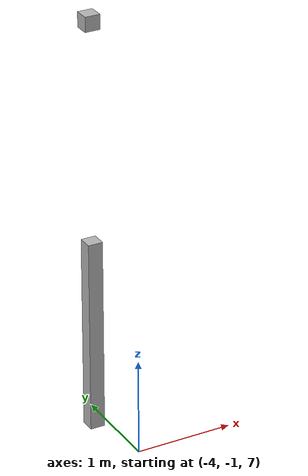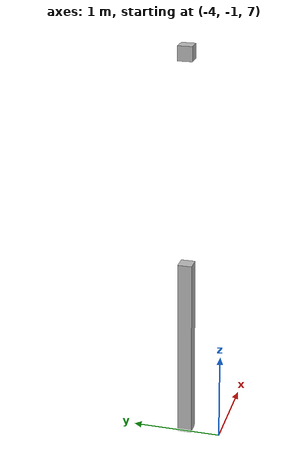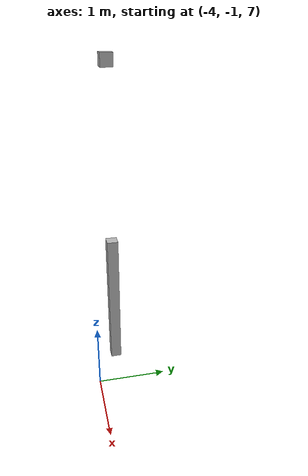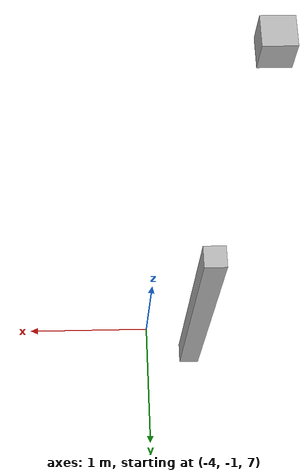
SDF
<sdf version="1.7">
 <world name="default">
  <model name="orthogonal_747_2.000.15_TS">
   <static>1</static>
   <link name="z_link_5_2_1">
    <inertial>
     <mass>1</mass>
     <inertia>
      <ixx>0.166667</ixx>
      <ixy>0</ixy>
      <ixz>0</ixz>
      <iyy>0.166667</iyy>
      <iyz>0</iyz>
      <izz>0.166667</izz>
     </inertia>
    </inertial>
    <pose>2.15 4.3 10.75 0 -0 0</pose>
    <visual name="visual_0">
     <laser_retro>4796</laser_retro>
     <geometry><box><size>0.15 1e-06 2</size></box></geometry>
     <material>
      <script><name>Gazebo/Grey</name><uri>file://media/materials/scripts/gazebo.material</uri></script>
      <shader type="pixel"><normal_map>__default__</normal_map></shader>
      <ambient>0.678 0.498 0.659 1</ambient>
      <diffuse>0.7 0.7 0.7 1</diffuse>
      <specular>0.01 0.01 0.01 1</specular>
      <emissive>0 0 0 1</emissive>
     </material>
     <pose>0 -0.075 0 0 -0 0</pose>
     <transparency>1</transparency>
    </visual>
    <visual name="visual_1">
     <laser_retro>4797</laser_retro>
     <geometry><box><size>0.15 1e-06 2</size></box></geometry>
     <material>
      <script><name>Gazebo/Grey</name><uri>file://media/materials/scripts/gazebo.material</uri></script>
      <shader type="pixel"><normal_map>__default__</normal_map></shader>
      <ambient>0.447 0.624 0.812 1</ambient>
      <diffuse>0.7 0.7 0.7 1</diffuse>
      <specular>0.01 0.01 0.01 1</specular>
      <emissive>0 0 0 1</emissive>
     </material>
     <pose>0 0.075 0 0 -0 0</pose>
     <transparency>1</transparency>
    </visual>
    <visual name="visual_2">
     <laser_retro>4798</laser_retro>
     <geometry><box><size>0.15 0.15 1e-06</size></box></geometry>
     <material>
      <script><name>Gazebo/Grey</name><uri>file://media/materials/scripts/gazebo.material</uri></script>
      <shader type="pixel"><normal_map>__default__</normal_map></shader>
      <ambient>0.988 0.686 0.243 1</ambient>
      <diffuse>0.7 0.7 0.7 1</diffuse>
      <specular>0.01 0.01 0.01 1</specular>
      <emissive>0 0 0 1</emissive>
     </material>
     <pose>0 0 -1 0 -0 0</pose>
     <transparency>1</transparency>
    </visual>
    <visual name="visual_3">
     <laser_retro>4799</laser_retro>
     <geometry><box><size>1e-06 0.15 2</size></box></geometry>
     <material>
      <script><name>Gazebo/Grey</name><uri>file://media/materials/scripts/gazebo.material</uri></script>
      <shader type="pixel"><normal_map>__default__</normal_map></shader>
      <ambient>0.988 0.914 0.31 1</ambient>
      <diffuse>0.7 0.7 0.7 1</diffuse>
      <specular>0.01 0.01 0.01 1</specular>
      <emissive>0 0 0 1</emissive>
     </material>
     <pose>0.075 0 0 0 -0 0</pose>
     <transparency>1</transparency>
    </visual>
    <visual name="visual_4">
     <laser_retro>4800</laser_retro>
     <geometry><box><size>0.15 0.15 1e-06</size></box></geometry>
     <material>
      <script><name>Gazebo/Grey</name><uri>file://media/materials/scripts/gazebo.material</uri></script>
      <shader type="pixel"><normal_map>__default__</normal_map></shader>
      <ambient>0.937 0.161 0.161 1</ambient>
      <diffuse>0.7 0.7 0.7 1</diffuse>
      <specular>0.01 0.01 0.01 1</specular>
      <emissive>0 0 0 1</emissive>
     </material>
     <pose>0 0 1 0 -0 0</pose>
     <transparency>1</transparency>
    </visual>
    <visual name="visual_5">
     <laser_retro>4801</laser_retro>
     <geometry><box><size>1e-06 0.15 2</size></box></geometry>
     <material>
      <script><name>Gazebo/Grey</name><uri>file://media/materials/scripts/gazebo.material</uri></script>
      <shader type="pixel"><normal_map>__default__</normal_map></shader>
      <ambient>0.541 0.886 0.204 1</ambient>
      <diffuse>0.7 0.7 0.7 1</diffuse>
      <specular>0.01 0.01 0.01 1</specular>
      <emissive>0 0 0 1</emissive>
     </material>
     <pose>-0.075 0 0 0 -0 0</pose>
     <transparency>1</transparency>
    </visual>
    <visual name="visual_texture">
     <geometry><box><size>0.149985 0.149985 1.9998</size></box></geometry>
     <material>
      <script>
       <uri>model://BASE_MODELS/simple_block_v2_textured/materials/scripts</uri>
       <uri>model://BASE_MODELS/simple_block_v2_textured/materials/textures</uri>
       <name>metal</name>
      </script>
     </material>
     <laser_retro>4802</laser_retro>
    </visual>
    <collision name="collision">
     <geometry><box><size>0.15 0.15 2</size></box></geometry>
     <surface>
      <friction>
       <ode><mu>1</mu><mu2>1</mu2><fdir1>0 0 0</fdir1><slip1>0</slip1><slip2>0</slip2></ode>
       <torsional>
        <coefficient>1</coefficient>
        <patch_radius>0</patch_radius>
        <surface_radius>0</surface_radius>
        <use_patch_radius>1</use_patch_radius>
        <ode><slip>0</slip></ode>
       </torsional>
      </friction>
      <bounce><restitution_coefficient>0</restitution_coefficient><threshold>1e+06</threshold></bounce>
      <contact>
       <collide_without_contact>0</collide_without_contact>
       <collide_without_contact_bitmask>1</collide_without_contact_bitmask>
       <collide_bitmask>1</collide_bitmask>
       <ode>
        <soft_cfm>0</soft_cfm>
        <soft_erp>0.2</soft_erp>
        <kp>1e+13</kp>
        <kd>1</kd>
        <max_vel>0.01</max_vel>
        <min_depth>0</min_depth>
       </ode>
       <bullet>
        <split_impulse>1</split_impulse>
        <split_impulse_penetration_threshold>-0.01</split_impulse_penetration_threshold>
        <soft_cfm>0</soft_cfm>
        <soft_erp>0.2</soft_erp>
        <kp>1e+13</kp>
        <kd>1</kd>
       </bullet>
      </contact>
     </surface>
    </collision>
   </link>
   <link name="u_link_6_2_1">
    <inertial>
     <mass>1</mass>
     <inertia>
      <ixx>0.166667</ixx>
      <ixy>0</ixy>
      <ixz>0</ixz>
      <iyy>0.166667</iyy>
      <iyz>0</iyz>
      <izz>0.166667</izz>
     </inertia>
    </inertial>
    <pose>2.15 4.3 13.975 0 -0 0</pose>
    <visual name="visual_0">
     <laser_retro>5741</laser_retro>
     <geometry><box><size>0.15 1e-06 0.15</size></box></geometry>
     <material>
      <script><name>Gazebo/Grey</name><uri>file://media/materials/scripts/gazebo.material</uri></script>
      <shader type="pixel"><normal_map>__default__</normal_map></shader>
      <ambient>0.678 0.498 0.659 1</ambient>
      <diffuse>0.7 0.7 0.7 1</diffuse>
      <specular>0.01 0.01 0.01 1</specular>
      <emissive>0 0 0 1</emissive>
     </material>
     <pose>0 -0.075 0 0 -0 0</pose>
     <transparency>1</transparency>
    </visual>
    <visual name="visual_1">
     <laser_retro>5742</laser_retro>
     <geometry><box><size>0.15 1e-06 0.15</size></box></geometry>
     <material>
      <script><name>Gazebo/Grey</name><uri>file://media/materials/scripts/gazebo.material</uri></script>
      <shader type="pixel"><normal_map>__default__</normal_map></shader>
      <ambient>0.447 0.624 0.812 1</ambient>
      <diffuse>0.7 0.7 0.7 1</diffuse>
      <specular>0.01 0.01 0.01 1</specular>
      <emissive>0 0 0 1</emissive>
     </material>
     <pose>0 0.075 0 0 -0 0</pose>
     <transparency>1</transparency>
    </visual>
    <visual name="visual_2">
     <laser_retro>5743</laser_retro>
     <geometry><box><size>0.15 0.15 1e-06</size></box></geometry>
     <material>
      <script><name>Gazebo/Grey</name><uri>file://media/materials/scripts/gazebo.material</uri></script>
      <shader type="pixel"><normal_map>__default__</normal_map></shader>
      <ambient>0.988 0.686 0.243 1</ambient>
      <diffuse>0.7 0.7 0.7 1</diffuse>
      <specular>0.01 0.01 0.01 1</specular>
      <emissive>0 0 0 1</emissive>
     </material>
     <pose>0 0 -0.075 0 -0 0</pose>
     <transparency>1</transparency>
    </visual>
    <visual name="visual_3">
     <laser_retro>5744</laser_retro>
     <geometry><box><size>1e-06 0.15 0.15</size></box></geometry>
     <material>
      <script><name>Gazebo/Grey</name><uri>file://media/materials/scripts/gazebo.material</uri></script>
      <shader type="pixel"><normal_map>__default__</normal_map></shader>
      <ambient>0.988 0.914 0.31 1</ambient>
      <diffuse>0.7 0.7 0.7 1</diffuse>
      <specular>0.01 0.01 0.01 1</specular>
      <emissive>0 0 0 1</emissive>
     </material>
     <pose>0.075 0 0 0 -0 0</pose>
     <transparency>1</transparency>
    </visual>
    <visual name="visual_4">
     <laser_retro>5745</laser_retro>
     <geometry><box><size>0.15 0.15 1e-06</size></box></geometry>
     <material>
      <script><name>Gazebo/Grey</name><uri>file://media/materials/scripts/gazebo.material</uri></script>
      <shader type="pixel"><normal_map>__default__</normal_map></shader>
      <ambient>0.937 0.161 0.161 1</ambient>
      <diffuse>0.7 0.7 0.7 1</diffuse>
      <specular>0.01 0.01 0.01 1</specular>
      <emissive>0 0 0 1</emissive>
     </material>
     <pose>0 0 0.075 0 -0 0</pose>
     <transparency>1</transparency>
    </visual>
    <visual name="visual_5">
     <laser_retro>5746</laser_retro>
     <geometry><box><size>1e-06 0.15 0.15</size></box></geometry>
     <material>
      <script><name>Gazebo/Grey</name><uri>file://media/materials/scripts/gazebo.material</uri></script>
      <shader type="pixel"><normal_map>__default__</normal_map></shader>
      <ambient>0.541 0.886 0.204 1</ambient>
      <diffuse>0.7 0.7 0.7 1</diffuse>
      <specular>0.01 0.01 0.01 1</specular>
      <emissive>0 0 0 1</emissive>
     </material>
     <pose>-0.075 0 0 0 -0 0</pose>
     <transparency>1</transparency>
    </visual>
    <visual name="visual_texture">
     <geometry><box><size>0.149985 0.149985 0.149985</size></box></geometry>
     <material>
      <script>
       <uri>model://BASE_MODELS/simple_block_v2_textured/materials/scripts</uri>
       <uri>model://BASE_MODELS/simple_block_v2_textured/materials/textures</uri>
       <name>metal</name>
      </script>
     </material>
     <laser_retro>5747</laser_retro>
    </visual>
    <collision name="collision">
     <geometry><box><size>0.15 0.15 0.15</size></box></geometry>
     <surface>
      <friction>
       <ode><mu>1</mu><mu2>1</mu2><fdir1>0 0 0</fdir1><slip1>0</slip1><slip2>0</slip2></ode>
       <torsional>
        <coefficient>1</coefficient>
        <patch_radius>0</patch_radius>
        <surface_radius>0</surface_radius>
        <use_patch_radius>1</use_patch_radius>
        <ode><slip>0</slip></ode>
       </torsional>
      </friction>
      <bounce><restitution_coefficient>0</restitution_coefficient><threshold>1e+06</threshold></bounce>
      <contact>
       <collide_without_contact>0</collide_without_contact>
       <collide_without_contact_bitmask>1</collide_without_contact_bitmask>
       <collide_bitmask>1</collide_bitmask>
       <ode>
        <soft_cfm>0</soft_cfm>
        <soft_erp>0.2</soft_erp>
        <kp>1e+13</kp>
        <kd>1</kd>
        <max_vel>0.01</max_vel>
        <min_depth>0</min_depth>
       </ode>
       <bullet>
        <split_impulse>1</split_impulse>
        <split_impulse_penetration_threshold>-0.01</split_impulse_penetration_threshold>
        <soft_cfm>0</soft_cfm>
        <soft_erp>0.2</soft_erp>
        <kp>1e+13</kp>
        <kd>1</kd>
       </bullet>
      </contact>
     </surface>
    </collision>
   </link>
   <pose>-6.47624 -5 -2.5 0 -0 0</pose>
  </model>
 </world>
</sdf>
